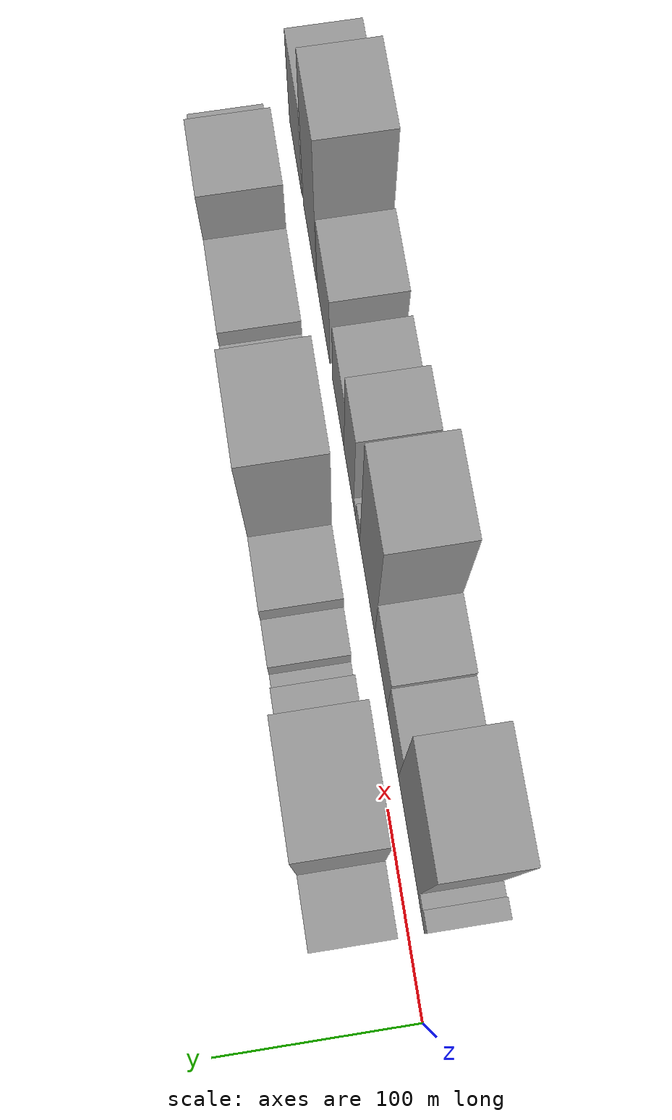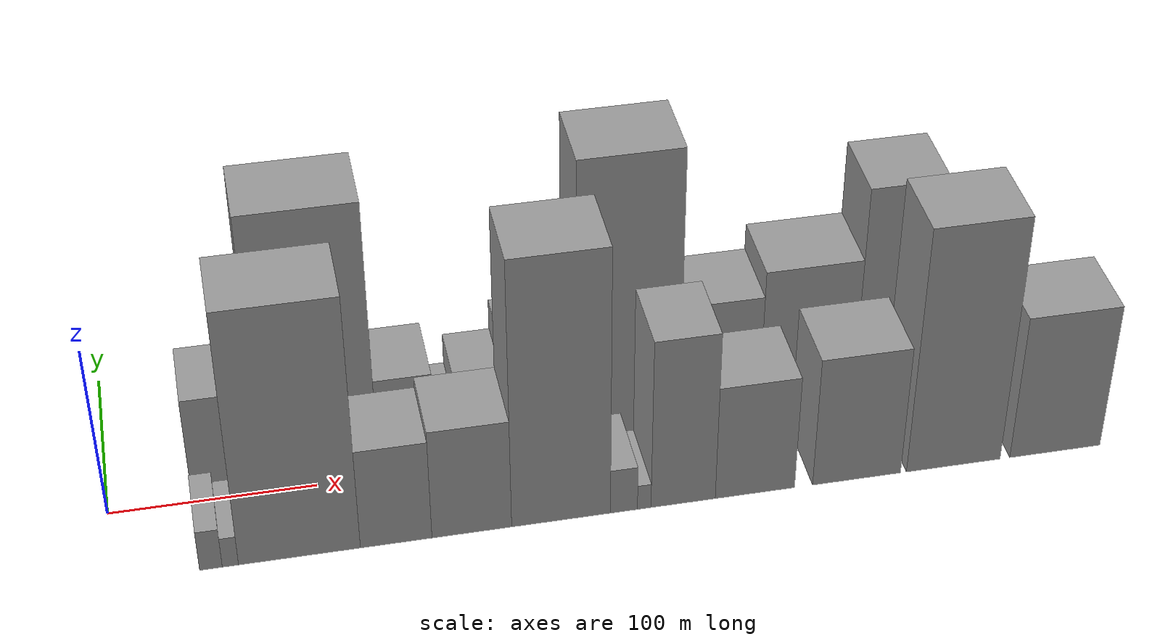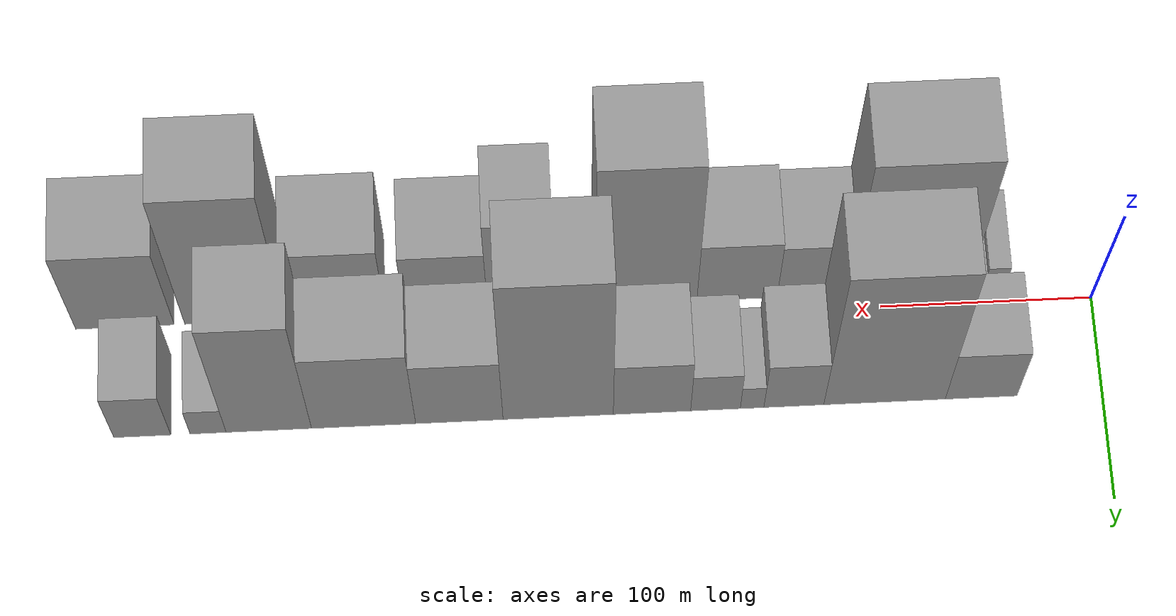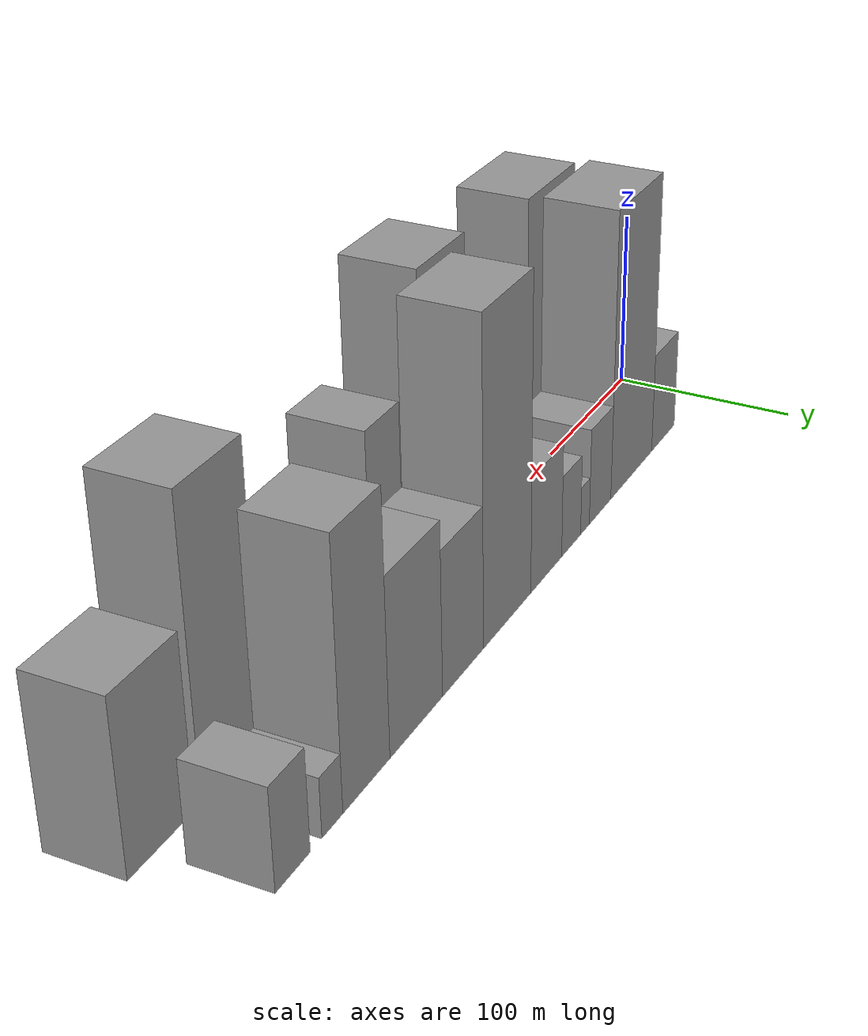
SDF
<sdf version="1.6">
 <world name="default">
  <scene>
   <sky><clouds><speed>12</speed></clouds></sky>
   <ambient>0.4 0.4 0.4 1</ambient>
   <background>0.7 0.7 0.7 1</background>
   <shadows>1</shadows>
  </scene>
  <gravity>0 0 -9.8066</gravity>
  <magnetic_field>6e-06 2.3e-05 -4.2e-05</magnetic_field>
  <physics default="0" name="default_physics" type="ode">
   <ode>
    <solver>
     <type>quick</type>
     <iters>10</iters>
     <sor>1.0</sor>
     <use_dynamic_moi_rescaling>0</use_dynamic_moi_rescaling>
    </solver>
    <constraints>
     <cfm>0</cfm>
     <erp>0.2</erp>
     <contact_max_correcting_vel>100</contact_max_correcting_vel>
     <contact_surface_layer>0.001</contact_surface_layer>
    </constraints>
   </ode>
   <max_step_size>0.004</max_step_size>
   <real_time_factor>1</real_time_factor>
   <real_time_update_rate>250</real_time_update_rate>
  </physics>
  <light name="sun" type="directional">
   <pose>0 0 10 0 0 0</pose>
   <diffuse>0.8 0.8 0.8 1</diffuse>
   <specular>0.2 0.2 0.2 1</specular>
   <attenuation>
    <range>1000</range>
    <constant>0.9</constant>
    <linear>0.01</linear>
    <quadratic>0.001</quadratic>
   </attenuation>
   <direction>-0.5 0.1 -0.9</direction>
  </light>
  <model name="building_1">
   <static>1</static>
   <pose>56.9132 27.5000 0 0.000000 0.000000 1.570796</pose>
   <link name="link">
    <pose>0 0 28.50 0 0 0</pose>
    <collision name="collision"><geometry><box><size>40.0000 33.8263 57.0000</size></box></geometry></collision>
    <visual name="visual">
     <cast_shadows>0</cast_shadows>
     <geometry><box><size>40.0000 33.8263 57.0000</size></box></geometry>
     <material>
      <script>
       <uri>model://grey_wall/materials/scripts</uri>
       <uri>model://grey_wall/materials/textures</uri>
       <name>vrc/grey_wall</name>
      </script>
     </material>
    </visual>
   </link>
  </model>
  <model name="building_2">
   <static>1</static>
   <pose>102.4256 27.5000 0 0.000000 0.000000 1.570796</pose>
   <link name="link">
    <pose>0 0 79.50 0 0 0</pose>
    <collision name="collision"><geometry><box><size>40.0000 57.1985 159.0000</size></box></geometry></collision>
    <visual name="visual">
     <cast_shadows>0</cast_shadows>
     <geometry><box><size>40.0000 57.1985 159.0000</size></box></geometry>
     <material>
      <script>
       <uri>model://grey_wall/materials/scripts</uri>
       <uri>model://grey_wall/materials/textures</uri>
       <name>vrc/grey_wall</name>
      </script>
     </material>
    </visual>
   </link>
  </model>
  <model name="building_3">
   <static>1</static>
   <pose>145.0967 27.5000 0 0.000000 0.000000 1.570796</pose>
   <link name="link">
    <pose>0 0 27.00 0 0 0</pose>
    <collision name="collision"><geometry><box><size>40.0000 28.1437 54.0000</size></box></geometry></collision>
    <visual name="visual">
     <cast_shadows>0</cast_shadows>
     <geometry><box><size>40.0000 28.1437 54.0000</size></box></geometry>
     <material>
      <script>
       <uri>model://grey_wall/materials/scripts</uri>
       <uri>model://grey_wall/materials/textures</uri>
       <name>vrc/grey_wall</name>
      </script>
     </material>
    </visual>
   </link>
  </model>
  <model name="building_4">
   <static>1</static>
   <pose>164.7209 27.5000 0 0.000000 0.000000 1.570796</pose>
   <link name="link">
    <pose>0 0 13.50 0 0 0</pose>
    <collision name="collision"><geometry><box><size>40.0000 11.1045 27.0000</size></box></geometry></collision>
    <visual name="visual">
     <cast_shadows>0</cast_shadows>
     <geometry><box><size>40.0000 11.1045 27.0000</size></box></geometry>
     <material>
      <script>
       <uri>model://grey_wall/materials/scripts</uri>
       <uri>model://grey_wall/materials/textures</uri>
       <name>vrc/grey_wall</name>
      </script>
     </material>
    </visual>
   </link>
  </model>
  <model name="building_5">
   <static>1</static>
   <pose>181.9331 27.5000 0 0.000000 0.000000 1.570796</pose>
   <link name="link">
    <pose>0 0 22.50 0 0 0</pose>
    <collision name="collision"><geometry><box><size>40.0000 23.3200 45.0000</size></box></geometry></collision>
    <visual name="visual">
     <cast_shadows>0</cast_shadows>
     <geometry><box><size>40.0000 23.3200 45.0000</size></box></geometry>
     <material>
      <script>
       <uri>model://grey_wall/materials/scripts</uri>
       <uri>model://grey_wall/materials/textures</uri>
       <name>vrc/grey_wall</name>
      </script>
     </material>
    </visual>
   </link>
  </model>
  <model name="building_6">
   <static>1</static>
   <pose>211.7280 27.5000 0 0.000000 0.000000 1.570796</pose>
   <link name="link">
    <pose>0 0 31.50 0 0 0</pose>
    <collision name="collision"><geometry><box><size>40.0000 36.2698 63.0000</size></box></geometry></collision>
    <visual name="visual">
     <cast_shadows>0</cast_shadows>
     <geometry><box><size>40.0000 36.2698 63.0000</size></box></geometry>
     <material>
      <script>
       <uri>model://grey_wall/materials/scripts</uri>
       <uri>model://grey_wall/materials/textures</uri>
       <name>vrc/grey_wall</name>
      </script>
     </material>
    </visual>
   </link>
  </model>
  <model name="building_7">
   <static>1</static>
   <pose>255.7000 27.5000 0 0.000000 0.000000 1.570796</pose>
   <link name="link">
    <pose>0 0 84.00 0 0 0</pose>
    <collision name="collision"><geometry><box><size>40.0000 51.6743 168.0000</size></box></geometry></collision>
    <visual name="visual">
     <cast_shadows>0</cast_shadows>
     <geometry><box><size>40.0000 51.6743 168.0000</size></box></geometry>
     <material>
      <script>
       <uri>model://grey_wall/materials/scripts</uri>
       <uri>model://grey_wall/materials/textures</uri>
       <name>vrc/grey_wall</name>
      </script>
     </material>
    </visual>
   </link>
  </model>
  <model name="building_8">
   <static>1</static>
   <pose>302.0151 27.5000 0 0.000000 0.000000 1.570796</pose>
   <link name="link">
    <pose>0 0 37.50 0 0 0</pose>
    <collision name="collision"><geometry><box><size>40.0000 40.9559 75.0000</size></box></geometry></collision>
    <visual name="visual">
     <cast_shadows>0</cast_shadows>
     <geometry><box><size>40.0000 40.9559 75.0000</size></box></geometry>
     <material>
      <script>
       <uri>model://grey_wall/materials/scripts</uri>
       <uri>model://grey_wall/materials/textures</uri>
       <name>vrc/grey_wall</name>
      </script>
     </material>
    </visual>
   </link>
  </model>
  <model name="building_9">
   <static>1</static>
   <pose>346.8405 27.5000 0 0.000000 0.000000 1.570796</pose>
   <link name="link">
    <pose>0 0 45.00 0 0 0</pose>
    <collision name="collision"><geometry><box><size>40.0000 48.6949 90.0000</size></box></geometry></collision>
    <visual name="visual">
     <cast_shadows>0</cast_shadows>
     <geometry><box><size>40.0000 48.6949 90.0000</size></box></geometry>
     <material>
      <script>
       <uri>model://grey_wall/materials/scripts</uri>
       <uri>model://grey_wall/materials/textures</uri>
       <name>vrc/grey_wall</name>
      </script>
     </material>
    </visual>
   </link>
  </model>
  <model name="building_10">
   <static>1</static>
   <pose>391.1506 27.5000 0 0.000000 0.000000 1.570796</pose>
   <link name="link">
    <pose>0 0 66.00 0 0 0</pose>
    <collision name="collision"><geometry><box><size>40.0000 39.9253 132.0000</size></box></geometry></collision>
    <visual name="visual">
     <cast_shadows>0</cast_shadows>
     <geometry><box><size>40.0000 39.9253 132.0000</size></box></geometry>
     <material>
      <script>
       <uri>model://grey_wall/materials/scripts</uri>
       <uri>model://grey_wall/materials/textures</uri>
       <name>vrc/grey_wall</name>
      </script>
     </material>
    </visual>
   </link>
  </model>
  <model name="building_11">
   <static>1</static>
   <pose>419.5340 27.5000 0 0.000000 0.000000 1.570796</pose>
   <link name="link">
    <pose>0 0 15.00 0 0 0</pose>
    <collision name="collision"><geometry><box><size>40.0000 16.8416 30.0000</size></box></geometry></collision>
    <visual name="visual">
     <cast_shadows>0</cast_shadows>
     <geometry><box><size>40.0000 16.8416 30.0000</size></box></geometry>
     <material>
      <script>
       <uri>model://grey_wall/materials/scripts</uri>
       <uri>model://grey_wall/materials/textures</uri>
       <name>vrc/grey_wall</name>
      </script>
     </material>
    </visual>
   </link>
  </model>
  <model name="building_12">
   <static>1</static>
   <pose>450.2597 27.5000 0 0.000000 0.000000 1.570796</pose>
   <link name="link">
    <pose>0 0 25.50 0 0 0</pose>
    <collision name="collision"><geometry><box><size>40.0000 26.6099 51.0000</size></box></geometry></collision>
    <visual name="visual">
     <cast_shadows>0</cast_shadows>
     <geometry><box><size>40.0000 26.6099 51.0000</size></box></geometry>
     <material>
      <script>
       <uri>model://grey_wall/materials/scripts</uri>
       <uri>model://grey_wall/materials/textures</uri>
       <name>vrc/grey_wall</name>
      </script>
     </material>
    </visual>
   </link>
  </model>
  <model name="building_13">
   <static>1</static>
   <pose>45.2503 -27.5000 0 0.000000 0.000000 1.570796</pose>
   <link name="link">
    <pose>0 0 12.00 0 0 0</pose>
    <collision name="collision"><geometry><box><size>40.0000 10.5006 24.0000</size></box></geometry></collision>
    <visual name="visual">
     <cast_shadows>0</cast_shadows>
     <geometry><box><size>40.0000 10.5006 24.0000</size></box></geometry>
     <material>
      <script>
       <uri>model://grey_wall/materials/scripts</uri>
       <uri>model://grey_wall/materials/textures</uri>
       <name>vrc/grey_wall</name>
      </script>
     </material>
    </visual>
   </link>
  </model>
  <model name="building_14">
   <static>1</static>
   <pose>54.2591 -27.5000 0 0.000000 0.000000 1.570796</pose>
   <link name="link">
    <pose>0 0 9.00 0 0 0</pose>
    <collision name="collision"><geometry><box><size>40.0000 7.5171 18.0000</size></box></geometry></collision>
    <visual name="visual">
     <cast_shadows>0</cast_shadows>
     <geometry><box><size>40.0000 7.5171 18.0000</size></box></geometry>
     <material>
      <script>
       <uri>model://grey_wall/materials/scripts</uri>
       <uri>model://grey_wall/materials/textures</uri>
       <name>vrc/grey_wall</name>
      </script>
     </material>
    </visual>
   </link>
  </model>
  <model name="building_15">
   <static>1</static>
   <pose>86.5865 -27.5000 0 0.000000 0.000000 1.570796</pose>
   <link name="link">
    <pose>0 0 75.00 0 0 0</pose>
    <collision name="collision"><geometry><box><size>40.0000 57.1376 150.0000</size></box></geometry></collision>
    <visual name="visual">
     <cast_shadows>0</cast_shadows>
     <geometry><box><size>40.0000 57.1376 150.0000</size></box></geometry>
     <material>
      <script>
       <uri>model://grey_wall/materials/scripts</uri>
       <uri>model://grey_wall/materials/textures</uri>
       <name>vrc/grey_wall</name>
      </script>
     </material>
    </visual>
   </link>
  </model>
  <model name="building_16">
   <static>1</static>
   <pose>132.1267 -27.5000 0 0.000000 0.000000 1.570796</pose>
   <link name="link">
    <pose>0 0 30.00 0 0 0</pose>
    <collision name="collision"><geometry><box><size>40.0000 33.9429 60.0000</size></box></geometry></collision>
    <visual name="visual">
     <cast_shadows>0</cast_shadows>
     <geometry><box><size>40.0000 33.9429 60.0000</size></box></geometry>
     <material>
      <script>
       <uri>model://grey_wall/materials/scripts</uri>
       <uri>model://grey_wall/materials/textures</uri>
       <name>vrc/grey_wall</name>
      </script>
     </material>
    </visual>
   </link>
  </model>
  <model name="building_17">
   <static>1</static>
   <pose>168.1950 -27.5000 0 0.000000 0.000000 1.570796</pose>
   <link name="link">
    <pose>0 0 33.00 0 0 0</pose>
    <collision name="collision"><geometry><box><size>40.0000 38.1938 66.0000</size></box></geometry></collision>
    <visual name="visual">
     <cast_shadows>0</cast_shadows>
     <geometry><box><size>40.0000 38.1938 66.0000</size></box></geometry>
     <material>
      <script>
       <uri>model://grey_wall/materials/scripts</uri>
       <uri>model://grey_wall/materials/textures</uri>
       <name>vrc/grey_wall</name>
      </script>
     </material>
    </visual>
   </link>
  </model>
  <model name="building_18">
   <static>1</static>
   <pose>211.2279 -27.5000 0 0.000000 0.000000 1.570796</pose>
   <link name="link">
    <pose>0 0 79.50 0 0 0</pose>
    <collision name="collision"><geometry><box><size>40.0000 47.8720 159.0000</size></box></geometry></collision>
    <visual name="visual">
     <cast_shadows>0</cast_shadows>
     <geometry><box><size>40.0000 47.8720 159.0000</size></box></geometry>
     <material>
      <script>
       <uri>model://grey_wall/materials/scripts</uri>
       <uri>model://grey_wall/materials/textures</uri>
       <name>vrc/grey_wall</name>
      </script>
     </material>
    </visual>
   </link>
  </model>
  <model name="building_19">
   <static>1</static>
   <pose>241.7629 -27.5000 0 0.000000 0.000000 1.570796</pose>
   <link name="link">
    <pose>0 0 13.50 0 0 0</pose>
    <collision name="collision"><geometry><box><size>40.0000 13.1978 27.0000</size></box></geometry></collision>
    <visual name="visual">
     <cast_shadows>0</cast_shadows>
     <geometry><box><size>40.0000 13.1978 27.0000</size></box></geometry>
     <material>
      <script>
       <uri>model://grey_wall/materials/scripts</uri>
       <uri>model://grey_wall/materials/textures</uri>
       <name>vrc/grey_wall</name>
      </script>
     </material>
    </visual>
   </link>
  </model>
  <model name="building_20">
   <static>1</static>
   <pose>251.6789 -27.5000 0 0.000000 0.000000 1.570796</pose>
   <link name="link">
    <pose>0 0 7.50 0 0 0</pose>
    <collision name="collision"><geometry><box><size>40.0000 6.6342 15.0000</size></box></geometry></collision>
    <visual name="visual">
     <cast_shadows>0</cast_shadows>
     <geometry><box><size>40.0000 6.6342 15.0000</size></box></geometry>
     <material>
      <script>
       <uri>model://grey_wall/materials/scripts</uri>
       <uri>model://grey_wall/materials/textures</uri>
       <name>vrc/grey_wall</name>
      </script>
     </material>
    </visual>
   </link>
  </model>
  <model name="building_21">
   <static>1</static>
   <pose>270.8257 -27.5000 0 0.000000 0.000000 1.570796</pose>
   <link name="link">
    <pose>0 0 51.00 0 0 0</pose>
    <collision name="collision"><geometry><box><size>40.0000 31.6596 102.0000</size></box></geometry></collision>
    <visual name="visual">
     <cast_shadows>0</cast_shadows>
     <geometry><box><size>40.0000 31.6596 102.0000</size></box></geometry>
     <material>
      <script>
       <uri>model://grey_wall/materials/scripts</uri>
       <uri>model://grey_wall/materials/textures</uri>
       <name>vrc/grey_wall</name>
      </script>
     </material>
    </visual>
   </link>
  </model>
  <model name="building_22">
   <static>1</static>
   <pose>306.3983 -27.5000 0 0.000000 0.000000 1.570796</pose>
   <link name="link">
    <pose>0 0 34.50 0 0 0</pose>
    <collision name="collision"><geometry><box><size>40.0000 39.4856 69.0000</size></box></geometry></collision>
    <visual name="visual">
     <cast_shadows>0</cast_shadows>
     <geometry><box><size>40.0000 39.4856 69.0000</size></box></geometry>
     <material>
      <script>
       <uri>model://grey_wall/materials/scripts</uri>
       <uri>model://grey_wall/materials/textures</uri>
       <name>vrc/grey_wall</name>
      </script>
     </material>
    </visual>
   </link>
  </model>
  <model name="building_23">
   <static>1</static>
   <pose>357.3171 -27.5000 0 0.000000 0.000000 1.570796</pose>
   <link name="link">
    <pose>0 0 39.00 0 0 0</pose>
    <collision name="collision"><geometry><box><size>40.0000 44.3521 78.0000</size></box></geometry></collision>
    <visual name="visual">
     <cast_shadows>0</cast_shadows>
     <geometry><box><size>40.0000 44.3521 78.0000</size></box></geometry>
     <material>
      <script>
       <uri>model://grey_wall/materials/scripts</uri>
       <uri>model://grey_wall/materials/textures</uri>
       <name>vrc/grey_wall</name>
      </script>
     </material>
    </visual>
   </link>
  </model>
  <model name="building_24">
   <static>1</static>
   <pose>406.4058 -27.5000 0 0.000000 0.000000 1.570796</pose>
   <link name="link">
    <pose>0 0 73.50 0 0 0</pose>
    <collision name="collision"><geometry><box><size>40.0000 47.8252 147.0000</size></box></geometry></collision>
    <visual name="visual">
     <cast_shadows>0</cast_shadows>
     <geometry><box><size>40.0000 47.8252 147.0000</size></box></geometry>
     <material>
      <script>
       <uri>model://grey_wall/materials/scripts</uri>
       <uri>model://grey_wall/materials/textures</uri>
       <name>vrc/grey_wall</name>
      </script>
     </material>
    </visual>
   </link>
  </model>
  <model name="building_25">
   <static>1</static>
   <pose>458.6308 -27.5000 0 0.000000 0.000000 1.570796</pose>
   <link name="link">
    <pose>0 0 43.50 0 0 0</pose>
    <collision name="collision"><geometry><box><size>40.0000 46.6248 87.0000</size></box></geometry></collision>
    <visual name="visual">
     <cast_shadows>0</cast_shadows>
     <geometry><box><size>40.0000 46.6248 87.0000</size></box></geometry>
     <material>
      <script>
       <uri>model://grey_wall/materials/scripts</uri>
       <uri>model://grey_wall/materials/textures</uri>
       <name>vrc/grey_wall</name>
      </script>
     </material>
    </visual>
   </link>
  </model>
 </world>
</sdf>
